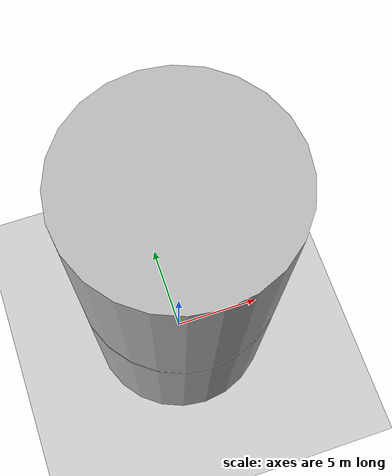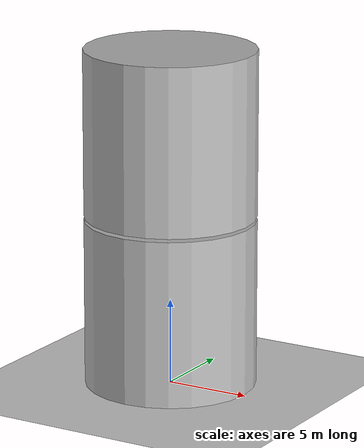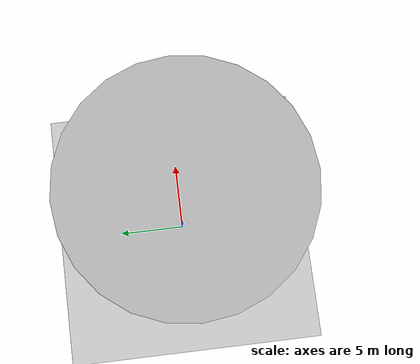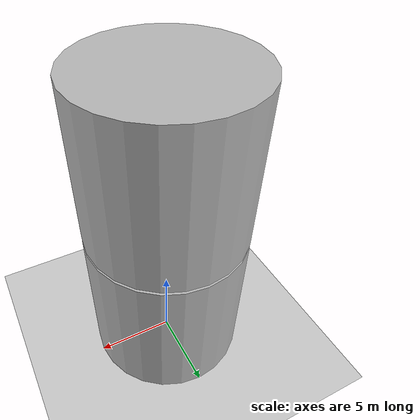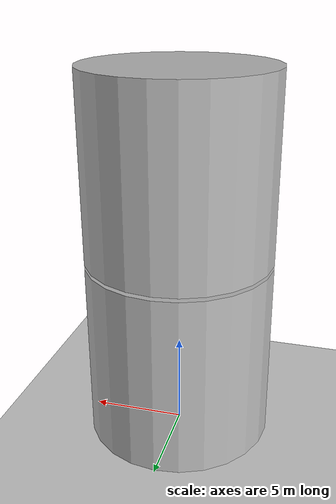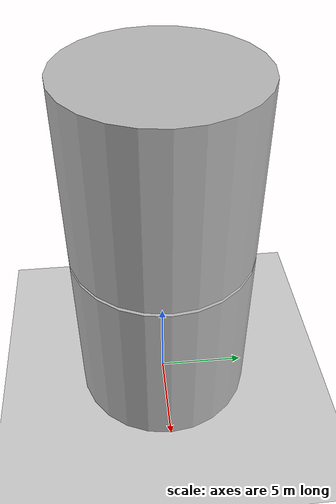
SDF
<?xml version="1.0" ?>
<sdf version="1.4">
  <world name="default">
    <include>
      <uri>model://ground_plane</uri>
    </include>
    <include>
      <uri>model://sun</uri>
    </include>

    <model name="model_1">
        <pose>0 0 0 0 0 0</pose>
      <link name="link_1">
        <inertial>
          <pose>0 -3 5 0 0 0</pose>
          <inertia>
            <ixx>100.0000</ixx>
            <ixy>0.000000</ixy>
            <ixz>0.000000</ixz>
            <iyy>100.000</iyy>
            <iyz>0.000000</iyz>
            <izz>100.000</izz>
          </inertia>
          <mass>10.000000</mass>
        </inertial>
        <visual name="visual_cylinder1">
          <pose>0 0 5 0 0 0</pose>
          <geometry>
            <cylinder>
              <radius>5</radius>
              <length>9.8</length>
            </cylinder>
          </geometry>
        </visual>
        <collision name="collision_cylinder1">
          <pose>0 0 5 0 0 0</pose>
          <geometry>
            <cylinder>
              <radius>5</radius>
              <length>9.8</length>
            </cylinder>
          </geometry>
        </collision>
      </link>

      <link name="link_2">
        <pose>0 0 20 1.5708 0 0</pose>
        <inertial>
          <pose>0 -5 -3 0 0 0</pose>
          <inertia>
            <ixx>100.000</ixx>
            <ixy>0.000000</ixy>
            <ixz>0.000000</ixz>
            <iyy>100.000</iyy>
            <iyz>0.000000</iyz>
            <izz>100.000</izz>
          </inertia>
          <mass>10.000000</mass>
        </inertial>
        <visual name="visual_cylinder2">
          <pose>0 -5 0 -1.5708 0 0</pose>
          <geometry>
            <cylinder>
              <radius>5</radius>
              <length>9.8</length>
            </cylinder>
          </geometry>
        </visual>
        <collision name="collision_cylinder2">
          <pose>0 -5 0 -1.5708 0 0</pose>
          <geometry>
            <cylinder>
              <radius>5</radius>
              <length>9.8</length>
            </cylinder>
          </geometry>
        </collision>
      </link>

      <joint name="joint_01" type="revolute">
        <parent>world</parent>
        <child>link_1</child>
        <!-- joint_01 coincident with world and link_1 frame -->
        <pose>0 0 0 0 0 0</pose>
        <axis>
          <limit>
            <lower>0</lower>
            <upper>0</upper>
            <effort>1000.000000</effort>
            <velocity>1000.000000</velocity>
          </limit>
          <dynamics>
            <damping>0.000000</damping>
            <friction>0.000000</friction>
          </dynamics>
          <xyz>1.000000 0.000000 0.000000</xyz>
        </axis>
        <sensor name="force_torque_01_parent_and_parent_to_child" type="force_torque">
          <always_on>true</always_on>
          <visualize>true</visualize>
          <update_rate>1000</update_rate>
          <force_torque>
            <frame>parent</frame>
            <measure_direction>parent_to_child</measure_direction>
          </force_torque>
        </sensor>
        <sensor name="force_torque_01_parent_and_child_to_parent" type="force_torque">
          <always_on>true</always_on>
          <visualize>true</visualize>
          <update_rate>1000</update_rate>
          <force_torque>
            <frame>parent</frame>
            <measure_direction>child_to_parent</measure_direction>
          </force_torque>
        </sensor>
        <sensor name="force_torque_01_child_and_parent_to_child" type="force_torque">
          <always_on>true</always_on>
          <visualize>true</visualize>
          <update_rate>1000</update_rate>
          <force_torque>
            <frame>child</frame>
            <measure_direction>parent_to_child</measure_direction>
          </force_torque>
        </sensor>
        <sensor name="force_torque_01_child_and_child_to_parent" type="force_torque">
          <always_on>true</always_on>
          <visualize>true</visualize>
          <update_rate>1000</update_rate>
          <force_torque>
            <frame>child</frame>
            <measure_direction>child_to_parent</measure_direction>
          </force_torque>
        </sensor>
        <sensor name="force_torque_01_sensor_and_parent_to_child" type="force_torque">
          <always_on>true</always_on>
          <visualize>true</visualize>
          <update_rate>1000</update_rate>
          <force_torque>
            <frame>sensor</frame>
            <measure_direction>parent_to_child</measure_direction>
          </force_torque>
        </sensor>
        <sensor name="force_torque_01_sensor_and_child_to_parent" type="force_torque">
          <always_on>true</always_on>
          <visualize>true</visualize>
          <update_rate>1000</update_rate>
          <force_torque>
            <frame>sensor</frame>
            <measure_direction>child_to_parent</measure_direction>
          </force_torque>
        </sensor>
        <physics>
          <provide_feedback>true</provide_feedback>
        </physics>
      </joint>

      <joint name="joint_12" type="revolute">
        <parent>link_1</parent>
        <child>link_2</child>
        <!-- joint_12 at the interface between the two cylinders -->
        <pose>1.0 -10.0 0.0 0 -0.7854 0</pose>
        <axis>
          <limit>
            <lower>-0.0</lower>
            <upper>0.0</upper>
            <effort>1000.000000</effort>
            <velocity>1000.000000</velocity>
          </limit>
          <dynamics>
            <damping>0.000000</damping>
            <friction>0.000000</friction>
          </dynamics>
          <xyz>0.000000 0.000000 1.000000</xyz>
        </axis>
        <sensor name="force_torque_12_parent_and_parent_to_child" type="force_torque">
          <always_on>true</always_on>
          <visualize>true</visualize>
          <update_rate>1000</update_rate>
          <force_torque>
            <frame>parent</frame>
            <measure_direction>parent_to_child</measure_direction>
          </force_torque>
        </sensor>
        <sensor name="force_torque_12_parent_and_child_to_parent" type="force_torque">
          <always_on>true</always_on>
          <visualize>true</visualize>
          <update_rate>1000</update_rate>
          <force_torque>
            <frame>parent</frame>
            <measure_direction>child_to_parent</measure_direction>
          </force_torque>
        </sensor>
        <sensor name="force_torque_12_child_and_parent_to_child" type="force_torque">
          <always_on>true</always_on>
          <visualize>true</visualize>
          <update_rate>1000</update_rate>
          <force_torque>
            <frame>child</frame>
            <measure_direction>parent_to_child</measure_direction>
          </force_torque>
        </sensor>
        <sensor name="force_torque_12_child_and_child_to_parent" type="force_torque">
          <always_on>true</always_on>
          <visualize>true</visualize>
          <update_rate>1000</update_rate>
          <force_torque>
            <frame>child</frame>
            <measure_direction>child_to_parent</measure_direction>
          </force_torque>
        </sensor>
        <sensor name="force_torque_12_sensor_and_parent_to_child" type="force_torque">
          <pose>0 0 0 0 -0.7854 0</pose>
          <always_on>true</always_on>
          <visualize>true</visualize>
          <update_rate>1000</update_rate>
          <force_torque>
            <frame>sensor</frame>
            <measure_direction>parent_to_child</measure_direction>
          </force_torque>
        </sensor>
        <sensor name="force_torque_12_sensor_and_child_to_parent" type="force_torque">
          <pose>0 0 0 0 -0.7854 0</pose>
          <always_on>true</always_on>
          <visualize>true</visualize>
          <update_rate>1000</update_rate>
          <force_torque>
            <frame>sensor</frame>
            <measure_direction>child_to_parent</measure_direction>
          </force_torque>
        </sensor>
        <physics>
          <provide_feedback>true</provide_feedback>
        </physics>
      </joint>
    </model>
  </world>
</sdf>
